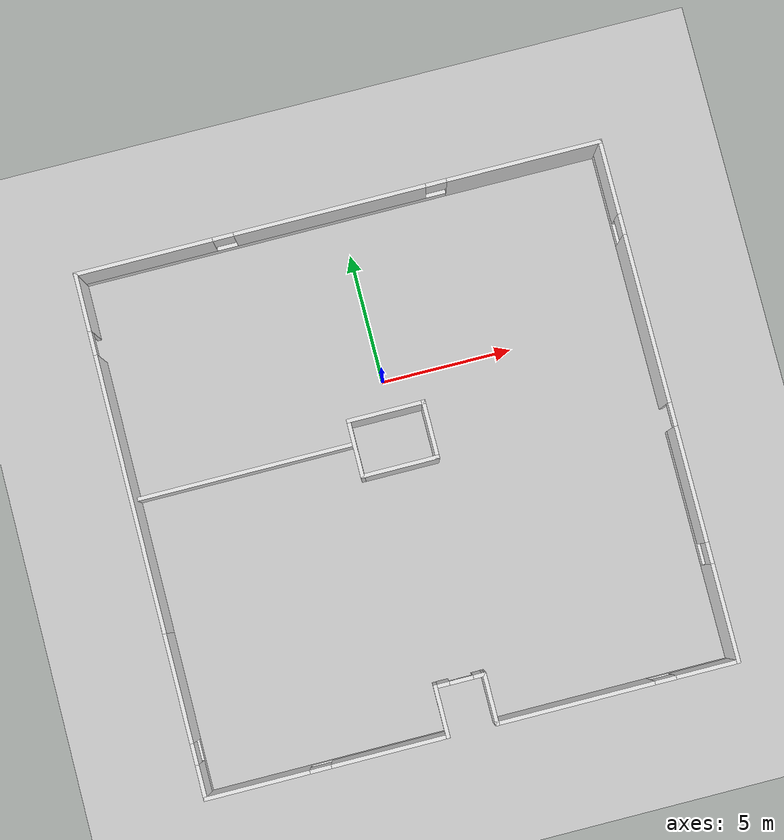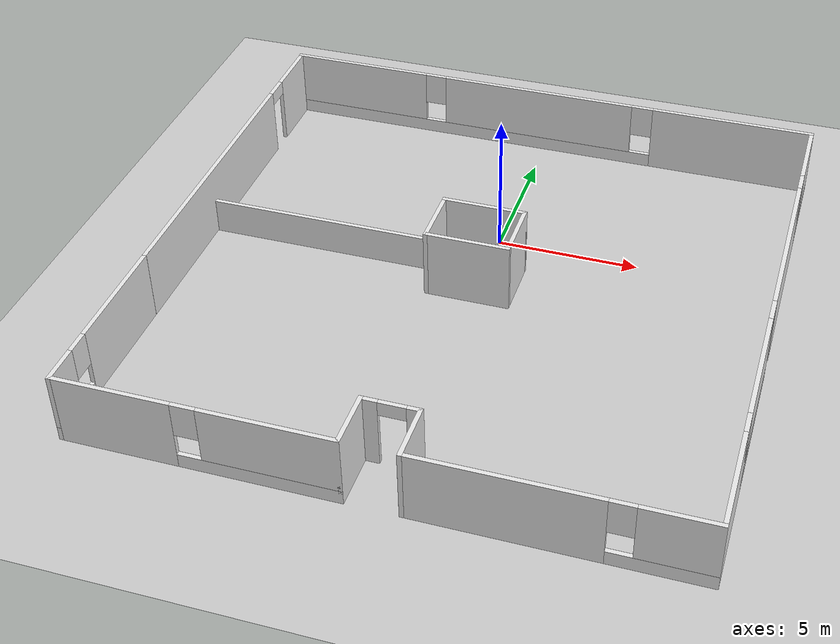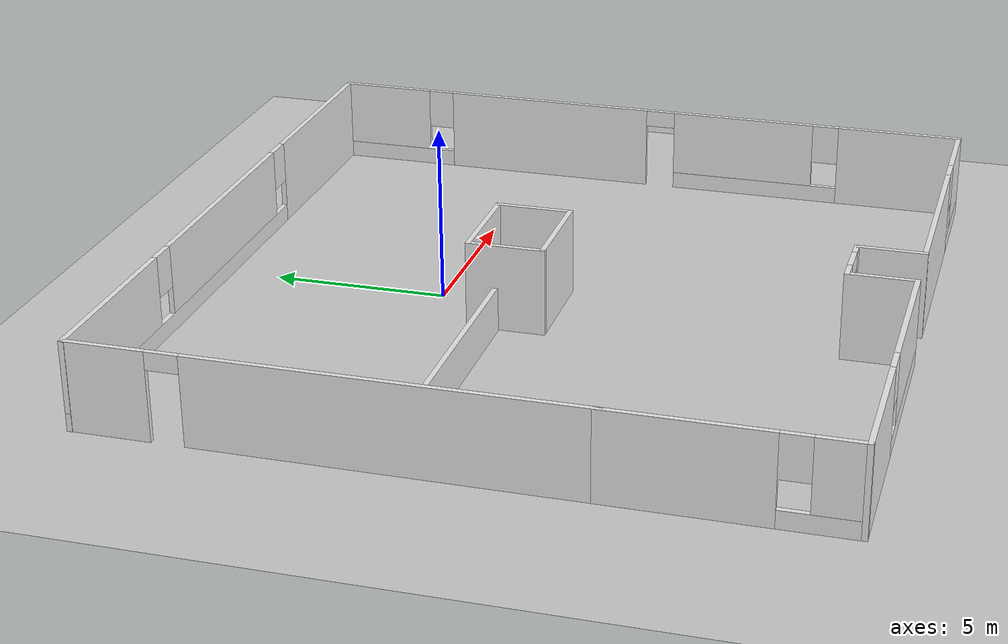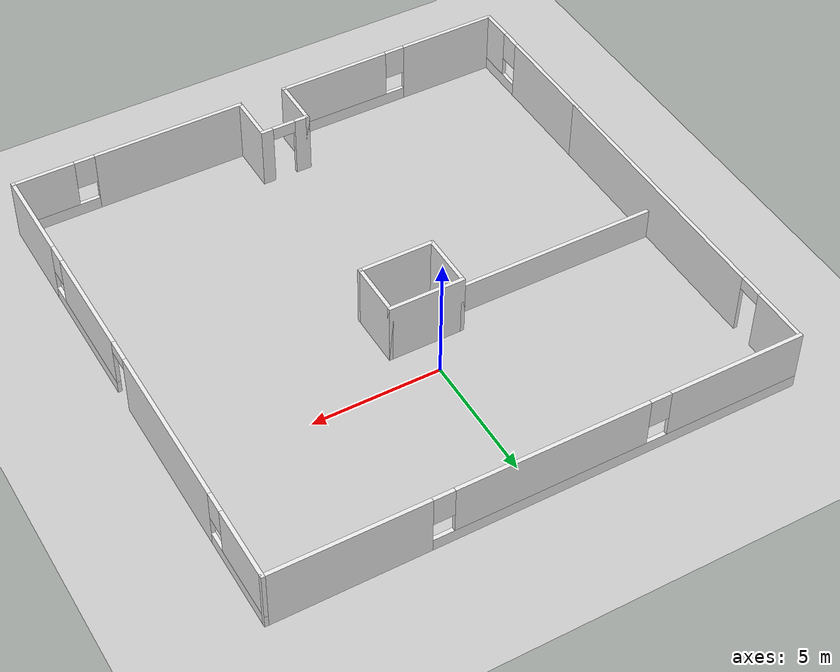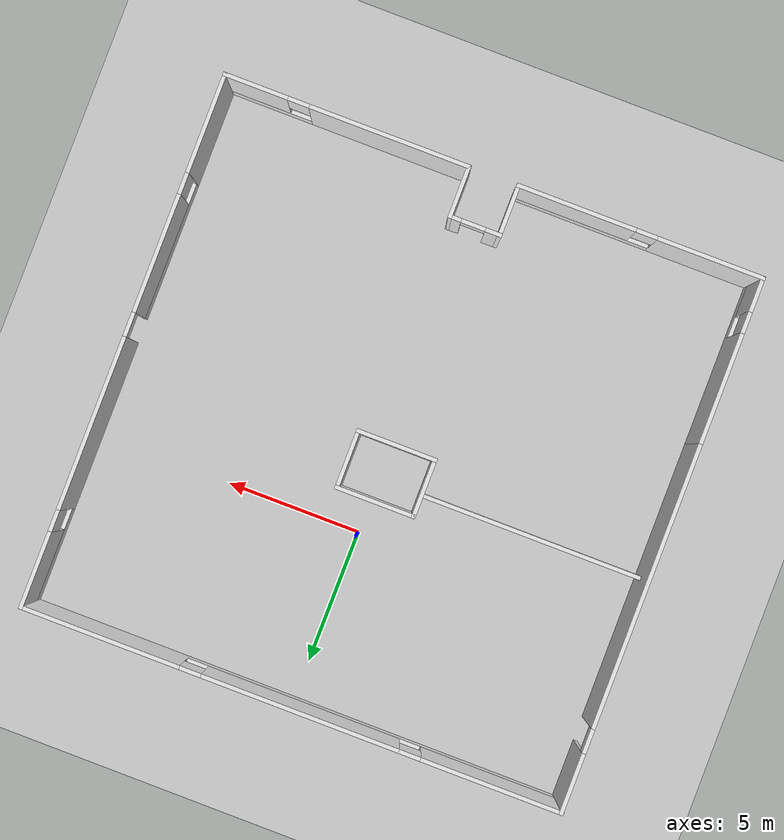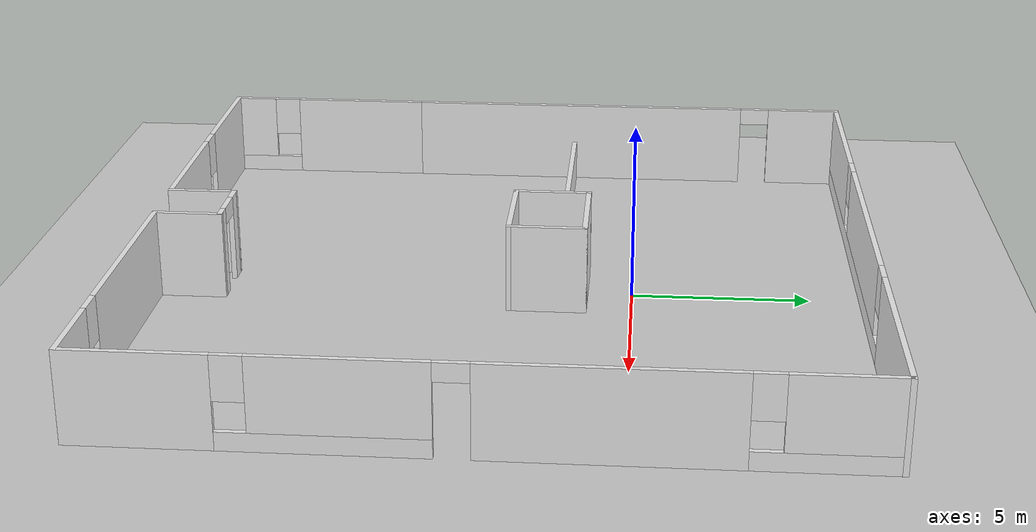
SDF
<sdf version="1.7">
 <world name="default">
  <model name="ground_plane">
   <static>1</static>
   <link name="link">
    <collision name="collision">
     <geometry><plane><normal>0 0 1</normal><size>100 100</size></plane></geometry>
     <surface><friction><ode><mu>100</mu><mu2>50</mu2></ode></friction></surface>
    </collision>
    <visual name="visual">
     <cast_shadows>0</cast_shadows>
     <geometry><plane><normal>0 0 1</normal><size>100 100</size></plane></geometry>
     <material>
      <script><uri>file://media/materials/scripts/gazebo.material</uri><name>Gazebo/Grey</name></script>
     </material>
    </visual>
   </link>
  </model>
  <model name="office_env_w">
   <pose>-5.83086 -2.08723 0 0 -0 0</pose>
   <link name="Wall_10">
    <visual name="Wall_10_Visual_0">
     <geometry><box><size>8.324 0.15 2.5</size></box></geometry>
     <material>
      <script>
       <uri>model://office_env_w/materials/scripts</uri>
       <uri>model://office_env_w/materials/textures</uri>
       <name>wall_white</name>
      </script>
     </material>
     <meta><layer>0</layer></meta>
    </visual>
    <collision name="Wall_10_Collision_0"><geometry><box><size>8.324 0.15 2.5</size></box></geometry></collision>
   </link>
   <static>1</static>
  </model>
  <model name="office_env_w_complete_0">
   <pose>-0.032449 -3.46226 0 0 -0 0</pose>
   <link name="Wall_10">
    <pose>-5.46873 -9.925 0 0 -0 0</pose>
    <visual name="Wall_10_Visual_0">
     <pose>-2.62812 0 1.25 0 -0 0</pose>
     <geometry><box><size>3.99376 0.15 2.5</size></box></geometry>
     <material>
      <script>
       <uri>model://office_env_w/materials/scripts</uri>
       <uri>model://office_env_w/materials/textures</uri>
       <name>wall_white</name>
      </script>
     </material>
     <meta><layer>0</layer></meta>
    </visual>
    <collision name="Wall_10_Collision_0">
     <geometry><box><size>3.99376 0.15 2.5</size></box></geometry>
     <pose>-2.62812 0 1.25 0 -0 0</pose>
    </collision>
    <visual name="Wall_10_Visual_1">
     <pose>1.99688 0 0.25 0 -0 0</pose>
     <geometry><box><size>5.25624 0.15 0.5</size></box></geometry>
     <material>
      <script>
       <uri>model://office_env_w/materials/scripts</uri>
       <uri>model://office_env_w/materials/textures</uri>
       <name>wall_white</name>
      </script>
     </material>
     <meta><layer>0</layer></meta>
    </visual>
    <collision name="Wall_10_Collision_1">
     <geometry><box><size>5.25624 0.15 0.5</size></box></geometry>
     <pose>1.99688 0 0.25 0 -0 0</pose>
    </collision>
    <visual name="Wall_10_Visual_2">
     <pose>2.39688 0 1.5 0 -0 0</pose>
     <geometry><box><size>4.45624 0.15 2</size></box></geometry>
     <material>
      <script>
       <uri>model://office_env_w/materials/scripts</uri>
       <uri>model://office_env_w/materials/textures</uri>
       <name>wall_white</name>
      </script>
     </material>
     <meta><layer>0</layer></meta>
    </visual>
    <collision name="Wall_10_Collision_2">
     <geometry><box><size>4.45624 0.15 2</size></box></geometry>
     <pose>2.39688 0 1.5 0 -0 0</pose>
    </collision>
    <visual name="Wall_10_Visual_3">
     <pose>-0.231239 0 1.9 0 -0 0</pose>
     <geometry><box><size>0.8 0.15 1.2</size></box></geometry>
     <material>
      <script>
       <uri>model://office_env_w/materials/scripts</uri>
       <uri>model://office_env_w/materials/textures</uri>
       <name>wall_white</name>
      </script>
     </material>
     <meta><layer>0</layer></meta>
    </visual>
    <collision name="Wall_10_Collision_3">
     <geometry><box><size>0.8 0.15 1.2</size></box></geometry>
     <pose>-0.231239 0 1.9 0 -0 0</pose>
    </collision>
   </link>
   <static>1</static>
   <link name="Wall_11">
    <collision name="Wall_11_Collision">
     <geometry><box><size>2 0.15 2.5</size></box></geometry>
     <pose>0 0 1.25 0 -0 0</pose>
    </collision>
    <visual name="Wall_11_Visual">
     <pose>0 0 1.25 0 -0 0</pose>
     <geometry><box><size>2 0.15 2.5</size></box></geometry>
     <material>
      <script>
       <uri>model://office_env_w/materials/scripts</uri>
       <uri>model://office_env_w/materials/textures</uri>
       <name>wall_white</name>
      </script>
     </material>
     <meta><layer>0</layer></meta>
    </visual>
    <pose>-0.918728 -9 0 0 -0 1.5708</pose>
   </link>
   <link name="Wall_12">
    <pose>0.006272 -8.075 0 0 -0 0</pose>
    <visual name="Wall_12_Visual_0">
     <pose>-0.695653 0 1.25 0 -0 0</pose>
     <geometry><box><size>0.608694 0.15 2.5</size></box></geometry>
     <material>
      <script>
       <uri>model://office_env_w/materials/scripts</uri>
       <uri>model://office_env_w/materials/textures</uri>
       <name>wall_white</name>
      </script>
     </material>
     <meta><layer>0</layer></meta>
    </visual>
    <collision name="Wall_12_Collision_0">
     <geometry><box><size>0.608694 0.15 2.5</size></box></geometry>
     <pose>-0.695653 0 1.25 0 -0 0</pose>
    </collision>
    <visual name="Wall_12_Visual_1">
     <pose>0.754347 0 1.25 0 -0 0</pose>
     <geometry><box><size>0.491306 0.15 2.5</size></box></geometry>
     <material>
      <script>
       <uri>model://office_env_w/materials/scripts</uri>
       <uri>model://office_env_w/materials/textures</uri>
       <name>wall_white</name>
      </script>
     </material>
     <meta><layer>0</layer></meta>
    </visual>
    <collision name="Wall_12_Collision_1">
     <geometry><box><size>0.491306 0.15 2.5</size></box></geometry>
     <pose>0.754347 0 1.25 0 -0 0</pose>
    </collision>
    <visual name="Wall_12_Visual_2">
     <pose>0.058694 0 2.25 0 -0 0</pose>
     <geometry><box><size>0.9 0.15 0.5</size></box></geometry>
     <material>
      <script>
       <uri>model://office_env_w/materials/scripts</uri>
       <uri>model://office_env_w/materials/textures</uri>
       <name>wall_white</name>
      </script>
     </material>
     <meta><layer>0</layer></meta>
    </visual>
    <collision name="Wall_12_Collision_2">
     <geometry><box><size>0.9 0.15 0.5</size></box></geometry>
     <pose>0.058694 0 2.25 0 -0 0</pose>
    </collision>
   </link>
   <static>1</static>
   <link name="Wall_15">
    <collision name="Wall_15_Collision">
     <geometry><box><size>2 0.15 2.5</size></box></geometry>
     <pose>0 0 1.25 0 -0 0</pose>
    </collision>
    <visual name="Wall_15_Visual">
     <pose>0 0 1.25 0 -0 0</pose>
     <geometry><box><size>2 0.15 2.5</size></box></geometry>
     <material>
      <script>
       <uri>model://office_env_w/materials/scripts</uri>
       <uri>model://office_env_w/materials/textures</uri>
       <name>wall_white</name>
      </script>
     </material>
     <meta><layer>0</layer></meta>
    </visual>
    <pose>0.931272 -9 0 0 0 -1.5708</pose>
   </link>
   <link name="Wall_16">
    <pose>5.48127 -9.925 0 0 -0 0</pose>
    <visual name="Wall_16_Visual_0">
     <pose>-1.61303 0 1.25 0 -0 0</pose>
     <geometry><box><size>6.02393 0.15 2.5</size></box></geometry>
     <material>
      <script>
       <uri>model://office_env_w/materials/scripts</uri>
       <uri>model://office_env_w/materials/textures</uri>
       <name>wall_white</name>
      </script>
     </material>
     <meta><layer>0</layer></meta>
    </visual>
    <collision name="Wall_16_Collision_0">
     <geometry><box><size>6.02393 0.15 2.5</size></box></geometry>
     <pose>-1.61303 0 1.25 0 -0 0</pose>
    </collision>
    <visual name="Wall_16_Visual_1">
     <pose>3.01197 0 0.25 0 -0 0</pose>
     <geometry><box><size>3.22607 0.15 0.5</size></box></geometry>
     <material>
      <script>
       <uri>model://office_env_w/materials/scripts</uri>
       <uri>model://office_env_w/materials/textures</uri>
       <name>wall_white</name>
      </script>
     </material>
     <meta><layer>0</layer></meta>
    </visual>
    <collision name="Wall_16_Collision_1">
     <geometry><box><size>3.22607 0.15 0.5</size></box></geometry>
     <pose>3.01197 0 0.25 0 -0 0</pose>
    </collision>
    <visual name="Wall_16_Visual_2">
     <pose>3.41197 0 1.5 0 -0 0</pose>
     <geometry><box><size>2.42607 0.15 2</size></box></geometry>
     <material>
      <script>
       <uri>model://office_env_w/materials/scripts</uri>
       <uri>model://office_env_w/materials/textures</uri>
       <name>wall_white</name>
      </script>
     </material>
     <meta><layer>0</layer></meta>
    </visual>
    <collision name="Wall_16_Collision_2">
     <geometry><box><size>2.42607 0.15 2</size></box></geometry>
     <pose>3.41197 0 1.5 0 -0 0</pose>
    </collision>
    <visual name="Wall_16_Visual_3">
     <pose>1.79893 0 1.9 0 -0 0</pose>
     <geometry><box><size>0.8 0.15 1.2</size></box></geometry>
     <material>
      <script>
       <uri>model://office_env_w/materials/scripts</uri>
       <uri>model://office_env_w/materials/textures</uri>
       <name>wall_white</name>
      </script>
     </material>
     <meta><layer>0</layer></meta>
    </visual>
    <collision name="Wall_16_Collision_3">
     <geometry><box><size>0.8 0.15 1.2</size></box></geometry>
     <pose>1.79893 0 1.9 0 -0 0</pose>
    </collision>
   </link>
   <static>1</static>
   <link name="Wall_17">
    <pose>10.0313 0 0 0 -0 1.5708</pose>
    <visual name="Wall_17_Visual_0">
     <pose>-8.12184 0 1.25 0 -0 0</pose>
     <geometry><box><size>3.75631 0.15 2.5</size></box></geometry>
     <material>
      <script>
       <uri>model://office_env_w/materials/scripts</uri>
       <uri>model://office_env_w/materials/textures</uri>
       <name>wall_white</name>
      </script>
     </material>
     <meta><layer>0</layer></meta>
    </visual>
    <collision name="Wall_17_Collision_0">
     <geometry><box><size>3.75631 0.15 2.5</size></box></geometry>
     <pose>-8.12184 0 1.25 0 -0 0</pose>
    </collision>
    <visual name="Wall_17_Visual_1">
     <pose>3.09096 0 1.25 0 -0 0</pose>
     <geometry><box><size>6.45362 0.15 2.5</size></box></geometry>
     <material>
      <script>
       <uri>model://office_env_w/materials/scripts</uri>
       <uri>model://office_env_w/materials/textures</uri>
       <name>wall_white</name>
      </script>
     </material>
     <meta><layer>0</layer></meta>
    </visual>
    <collision name="Wall_17_Collision_1">
     <geometry><box><size>6.45362 0.15 2.5</size></box></geometry>
     <pose>3.09096 0 1.25 0 -0 0</pose>
    </collision>
    <visual name="Wall_17_Visual_2">
     <pose>-3.63977 0 0.25 0 -0 0</pose>
     <geometry><box><size>5.20784 0.15 0.5</size></box></geometry>
     <material>
      <script>
       <uri>model://office_env_w/materials/scripts</uri>
       <uri>model://office_env_w/materials/textures</uri>
       <name>wall_white</name>
      </script>
     </material>
     <meta><layer>0</layer></meta>
    </visual>
    <collision name="Wall_17_Collision_2">
     <geometry><box><size>5.20784 0.15 0.5</size></box></geometry>
     <pose>-3.63977 0 0.25 0 -0 0</pose>
    </collision>
    <visual name="Wall_17_Visual_3">
     <pose>8.15888 0 0.25 0 -0 0</pose>
     <geometry><box><size>3.68223 0.15 0.5</size></box></geometry>
     <material>
      <script>
       <uri>model://office_env_w/materials/scripts</uri>
       <uri>model://office_env_w/materials/textures</uri>
       <name>wall_white</name>
      </script>
     </material>
     <meta><layer>0</layer></meta>
    </visual>
    <collision name="Wall_17_Collision_3">
     <geometry><box><size>3.68223 0.15 0.5</size></box></geometry>
     <pose>8.15888 0 0.25 0 -0 0</pose>
    </collision>
    <visual name="Wall_17_Visual_4">
     <pose>-3.23977 0 1.5 0 -0 0</pose>
     <geometry><box><size>4.40784 0.15 2</size></box></geometry>
     <material>
      <script>
       <uri>model://office_env_w/materials/scripts</uri>
       <uri>model://office_env_w/materials/textures</uri>
       <name>wall_white</name>
      </script>
     </material>
     <meta><layer>0</layer></meta>
    </visual>
    <collision name="Wall_17_Collision_4">
     <geometry><box><size>4.40784 0.15 2</size></box></geometry>
     <pose>-3.23977 0 1.5 0 -0 0</pose>
    </collision>
    <visual name="Wall_17_Visual_5">
     <pose>-3.23977 0 1.5 0 -0 0</pose>
     <geometry><box><size>4.40784 0.15 2</size></box></geometry>
     <material>
      <script>
       <uri>model://office_env_w/materials/scripts</uri>
       <uri>model://office_env_w/materials/textures</uri>
       <name>wall_white</name>
      </script>
     </material>
     <meta><layer>0</layer></meta>
    </visual>
    <collision name="Wall_17_Collision_5">
     <geometry><box><size>4.40784 0.15 2</size></box></geometry>
     <pose>-3.23977 0 1.5 0 -0 0</pose>
    </collision>
    <visual name="Wall_17_Visual_6">
     <pose>8.55889 0 1.5 0 -0 0</pose>
     <geometry><box><size>2.88223 0.15 2</size></box></geometry>
     <material>
      <script>
       <uri>model://office_env_w/materials/scripts</uri>
       <uri>model://office_env_w/materials/textures</uri>
       <name>wall_white</name>
      </script>
     </material>
     <meta><layer>0</layer></meta>
    </visual>
    <collision name="Wall_17_Collision_6">
     <geometry><box><size>2.88223 0.15 2</size></box></geometry>
     <pose>8.55889 0 1.5 0 -0 0</pose>
    </collision>
    <visual name="Wall_17_Visual_7">
     <pose>-5.84369 0 1.9 0 -0 0</pose>
     <geometry><box><size>0.8 0.15 1.2</size></box></geometry>
     <material>
      <script>
       <uri>model://office_env_w/materials/scripts</uri>
       <uri>model://office_env_w/materials/textures</uri>
       <name>wall_white</name>
      </script>
     </material>
     <meta><layer>0</layer></meta>
    </visual>
    <collision name="Wall_17_Collision_7">
     <geometry><box><size>0.8 0.15 1.2</size></box></geometry>
     <pose>-5.84369 0 1.9 0 -0 0</pose>
    </collision>
    <visual name="Wall_17_Visual_8">
     <pose>6.71777 0 1.9 0 -0 0</pose>
     <geometry><box><size>0.8 0.15 1.2</size></box></geometry>
     <material>
      <script>
       <uri>model://office_env_w/materials/scripts</uri>
       <uri>model://office_env_w/materials/textures</uri>
       <name>wall_white</name>
      </script>
     </material>
     <meta><layer>0</layer></meta>
    </visual>
    <collision name="Wall_17_Collision_8">
     <geometry><box><size>0.8 0.15 1.2</size></box></geometry>
     <pose>6.71777 0 1.9 0 -0 0</pose>
    </collision>
    <visual name="Wall_17_Visual_9">
     <pose>-0.585848 0 2.25 0 -0 0</pose>
     <geometry><box><size>0.9 0.15 0.5</size></box></geometry>
     <material>
      <script>
       <uri>model://office_env_w/materials/scripts</uri>
       <uri>model://office_env_w/materials/textures</uri>
       <name>wall_white</name>
      </script>
     </material>
     <meta><layer>0</layer></meta>
    </visual>
    <collision name="Wall_17_Collision_9">
     <geometry><box><size>0.9 0.15 0.5</size></box></geometry>
     <pose>-0.585848 0 2.25 0 -0 0</pose>
    </collision>
    <visual name="Wall_17_Visual_10">
     <pose>-0.585848 0 2.25 0 -0 0</pose>
     <geometry><box><size>0.9 0.15 0.5</size></box></geometry>
     <material>
      <script>
       <uri>model://office_env_w/materials/scripts</uri>
       <uri>model://office_env_w/materials/textures</uri>
       <name>wall_white</name>
      </script>
     </material>
     <meta><layer>0</layer></meta>
    </visual>
    <collision name="Wall_17_Collision_10">
     <geometry><box><size>0.9 0.15 0.5</size></box></geometry>
     <pose>-0.585848 0 2.25 0 -0 0</pose>
    </collision>
   </link>
   <static>1</static>
   <static>1</static>
   <static>1</static>
   <link name="Wall_19">
    <pose>-0 9.925 0 0 -0 3.14159</pose>
    <visual name="Wall_19_Visual_0">
     <pose>-7.12533 0 1.25 0 -0 0</pose>
     <geometry><box><size>5.96188 0.15 2.5</size></box></geometry>
     <material>
      <script>
       <uri>model://office_env_w/materials/scripts</uri>
       <uri>model://office_env_w/materials/textures</uri>
       <name>wall_white</name>
      </script>
     </material>
     <meta><layer>0</layer></meta>
    </visual>
    <collision name="Wall_19_Collision_0">
     <geometry><box><size>5.96188 0.15 2.5</size></box></geometry>
     <pose>-7.12533 0 1.25 0 -0 0</pose>
    </collision>
    <visual name="Wall_19_Visual_1">
     <pose>2.98094 0 0.25 0 -0 0</pose>
     <geometry><box><size>14.2507 0.15 0.5</size></box></geometry>
     <material>
      <script>
       <uri>model://office_env_w/materials/scripts</uri>
       <uri>model://office_env_w/materials/textures</uri>
       <name>wall_white</name>
      </script>
     </material>
     <meta><layer>0</layer></meta>
    </visual>
    <collision name="Wall_19_Collision_1">
     <geometry><box><size>14.2507 0.15 0.5</size></box></geometry>
     <pose>2.98094 0 0.25 0 -0 0</pose>
    </collision>
    <visual name="Wall_19_Visual_2">
     <pose>0.326454 0 1.5 0 -0 0</pose>
     <geometry><box><size>7.34169 0.15 2</size></box></geometry>
     <material>
      <script>
       <uri>model://office_env_w/materials/scripts</uri>
       <uri>model://office_env_w/materials/textures</uri>
       <name>wall_white</name>
      </script>
     </material>
     <meta><layer>0</layer></meta>
    </visual>
    <collision name="Wall_19_Collision_2">
     <geometry><box><size>7.34169 0.15 2</size></box></geometry>
     <pose>0.326454 0 1.5 0 -0 0</pose>
    </collision>
    <visual name="Wall_19_Visual_3">
     <pose>7.45179 0 1.5 0 -0 0</pose>
     <geometry><box><size>5.30898 0.15 2</size></box></geometry>
     <material>
      <script>
       <uri>model://office_env_w/materials/scripts</uri>
       <uri>model://office_env_w/materials/textures</uri>
       <name>wall_white</name>
      </script>
     </material>
     <meta><layer>0</layer></meta>
    </visual>
    <collision name="Wall_19_Collision_3">
     <geometry><box><size>5.30898 0.15 2</size></box></geometry>
     <pose>7.45179 0 1.5 0 -0 0</pose>
    </collision>
    <visual name="Wall_19_Visual_4">
     <pose>-3.74439 0 1.9 0 -0 0</pose>
     <geometry><box><size>0.8 0.15 1.2</size></box></geometry>
     <material>
      <script>
       <uri>model://office_env_w/materials/scripts</uri>
       <uri>model://office_env_w/materials/textures</uri>
       <name>wall_white</name>
      </script>
     </material>
     <meta><layer>0</layer></meta>
    </visual>
    <collision name="Wall_19_Collision_4">
     <geometry><box><size>0.8 0.15 1.2</size></box></geometry>
     <pose>-3.74439 0 1.9 0 -0 0</pose>
    </collision>
    <visual name="Wall_19_Visual_5">
     <pose>4.3973 0 1.9 0 -0 0</pose>
     <geometry><box><size>0.8 0.15 1.2</size></box></geometry>
     <material>
      <script>
       <uri>model://office_env_w/materials/scripts</uri>
       <uri>model://office_env_w/materials/textures</uri>
       <name>wall_white</name>
      </script>
     </material>
     <meta><layer>0</layer></meta>
    </visual>
    <collision name="Wall_19_Collision_5">
     <geometry><box><size>0.8 0.15 1.2</size></box></geometry>
     <pose>4.3973 0 1.9 0 -0 0</pose>
    </collision>
   </link>
   <static>1</static>
   <static>1</static>
   <link name="Wall_2">
    <pose>-10.0187 -6.75 0 0 0 -1.5708</pose>
    <visual name="Wall_2_Visual_0">
     <pose>-1.06854 0 1.25 0 -0 0</pose>
     <geometry><box><size>4.36293 0.15 2.5</size></box></geometry>
     <material>
      <script>
       <uri>model://office_env_w/materials/scripts</uri>
       <uri>model://office_env_w/materials/textures</uri>
       <name>wall_white</name>
      </script>
     </material>
     <meta><layer>0</layer></meta>
    </visual>
    <collision name="Wall_2_Collision_0">
     <geometry><box><size>4.36293 0.15 2.5</size></box></geometry>
     <pose>-1.06854 0 1.25 0 -0 0</pose>
    </collision>
    <visual name="Wall_2_Visual_1">
     <pose>2.18147 0 0.25 0 -0 0</pose>
     <geometry><box><size>2.13707 0.15 0.5</size></box></geometry>
     <material>
      <script>
       <uri>model://office_env_w/materials/scripts</uri>
       <uri>model://office_env_w/materials/textures</uri>
       <name>wall_white</name>
      </script>
     </material>
     <meta><layer>0</layer></meta>
    </visual>
    <collision name="Wall_2_Collision_1">
     <geometry><box><size>2.13707 0.15 0.5</size></box></geometry>
     <pose>2.18147 0 0.25 0 -0 0</pose>
    </collision>
    <visual name="Wall_2_Visual_2">
     <pose>2.58147 0 1.5 0 -0 0</pose>
     <geometry><box><size>1.33707 0.15 2</size></box></geometry>
     <material>
      <script>
       <uri>model://office_env_w/materials/scripts</uri>
       <uri>model://office_env_w/materials/textures</uri>
       <name>wall_white</name>
      </script>
     </material>
     <meta><layer>0</layer></meta>
    </visual>
    <collision name="Wall_2_Collision_2">
     <geometry><box><size>1.33707 0.15 2</size></box></geometry>
     <pose>2.58147 0 1.5 0 -0 0</pose>
    </collision>
    <visual name="Wall_2_Visual_3">
     <pose>1.51293 0 1.9 0 -0 0</pose>
     <geometry><box><size>0.8 0.15 1.2</size></box></geometry>
     <material>
      <script>
       <uri>model://office_env_w/materials/scripts</uri>
       <uri>model://office_env_w/materials/textures</uri>
       <name>wall_white</name>
      </script>
     </material>
     <meta><layer>0</layer></meta>
    </visual>
    <collision name="Wall_2_Collision_3">
     <geometry><box><size>0.8 0.15 1.2</size></box></geometry>
     <pose>1.51293 0 1.9 0 -0 0</pose>
    </collision>
   </link>
   <static>1</static>
   <link name="Wall_20">
    <pose>-10.018 3.125 0 0 0 -1.5708</pose>
    <visual name="Wall_20_Visual_0">
     <pose>-5.73803 0 1.25 0 -0 0</pose>
     <geometry><box><size>2.27394 0.15 2.5</size></box></geometry>
     <material>
      <script>
       <uri>model://office_env_w/materials/scripts</uri>
       <uri>model://office_env_w/materials/textures</uri>
       <name>wall_white</name>
      </script>
     </material>
     <meta><layer>0</layer></meta>
    </visual>
    <collision name="Wall_20_Collision_0">
     <geometry><box><size>2.27394 0.15 2.5</size></box></geometry>
     <pose>-5.73803 0 1.25 0 -0 0</pose>
    </collision>
    <visual name="Wall_20_Visual_1">
     <pose>1.58697 0 1.25 0 -0 0</pose>
     <geometry><box><size>10.5761 0.15 2.5</size></box></geometry>
     <material>
      <script>
       <uri>model://office_env_w/materials/scripts</uri>
       <uri>model://office_env_w/materials/textures</uri>
       <name>wall_white</name>
      </script>
     </material>
     <meta><layer>0</layer></meta>
    </visual>
    <collision name="Wall_20_Collision_1">
     <geometry><box><size>10.5761 0.15 2.5</size></box></geometry>
     <pose>1.58697 0 1.25 0 -0 0</pose>
    </collision>
    <visual name="Wall_20_Visual_2">
     <pose>-4.15106 0 2.25 0 -0 0</pose>
     <geometry><box><size>0.9 0.15 0.5</size></box></geometry>
     <material>
      <script>
       <uri>model://office_env_w/materials/scripts</uri>
       <uri>model://office_env_w/materials/textures</uri>
       <name>wall_white</name>
      </script>
     </material>
     <meta><layer>0</layer></meta>
    </visual>
    <collision name="Wall_20_Collision_2">
     <geometry><box><size>0.9 0.15 0.5</size></box></geometry>
     <pose>-4.15106 0 2.25 0 -0 0</pose>
    </collision>
   </link>
   <static>1</static>
   <link name="Wall_22">
    <collision name="Wall_22_Collision">
     <geometry><box><size>3 0.15 2.5</size></box></geometry>
     <pose>0 0 1.25 0 -0 0</pose>
    </collision>
    <visual name="Wall_22_Visual">
     <pose>0 0 1.25 0 -0 0</pose>
     <geometry><box><size>3 0.15 2.5</size></box></geometry>
     <material>
      <script>
       <uri>model://office_env_w/materials/scripts</uri>
       <uri>model://office_env_w/materials/textures</uri>
       <name>wall_white</name>
      </script>
     </material>
     <meta><layer>0</layer></meta>
    </visual>
    <pose>-0.163956 0.04737 0 0 -0 3.14159</pose>
   </link>
   <link name="Wall_23">
    <collision name="Wall_23_Collision">
     <geometry><box><size>2.25 0.15 2.5</size></box></geometry>
     <pose>0 0 1.25 0 -0 0</pose>
    </collision>
    <visual name="Wall_23_Visual">
     <pose>0 0 1.25 0 -0 0</pose>
     <geometry><box><size>2.25 0.15 2.5</size></box></geometry>
     <material>
      <script>
       <uri>model://office_env_w/materials/scripts</uri>
       <uri>model://office_env_w/materials/textures</uri>
       <name>wall_white</name>
      </script>
     </material>
     <meta><layer>0</layer></meta>
    </visual>
    <pose>-1.58896 1.09737 0 0 -0 1.5708</pose>
   </link>
   <link name="Wall_24">
    <collision name="Wall_24_Collision">
     <geometry><box><size>3 0.15 2.5</size></box></geometry>
     <pose>0 0 1.25 0 -0 0</pose>
    </collision>
    <visual name="Wall_24_Visual">
     <pose>0 0 1.25 0 -0 0</pose>
     <geometry><box><size>3 0.15 2.5</size></box></geometry>
     <material>
      <script>
       <uri>model://office_env_w/materials/scripts</uri>
       <uri>model://office_env_w/materials/textures</uri>
       <name>wall_white</name>
      </script>
     </material>
     <meta><layer>0</layer></meta>
    </visual>
    <pose>-0.163956 2.14737 0 0 -0 0</pose>
   </link>
   <link name="Wall_25">
    <collision name="Wall_25_Collision">
     <geometry><box><size>2.25 0.15 2.5</size></box></geometry>
     <pose>0 0 1.25 0 -0 0</pose>
    </collision>
    <visual name="Wall_25_Visual">
     <pose>0 0 1.25 0 -0 0</pose>
     <geometry><box><size>2.25 0.15 2.5</size></box></geometry>
     <material>
      <script>
       <uri>model://office_env_w/materials/scripts</uri>
       <uri>model://office_env_w/materials/textures</uri>
       <name>wall_white</name>
      </script>
     </material>
     <meta><layer>0</layer></meta>
    </visual>
    <pose>1.26104 1.09737 0 0 0 -1.5708</pose>
   </link>
   <static>1</static>
  </model>
 </world>
</sdf>
